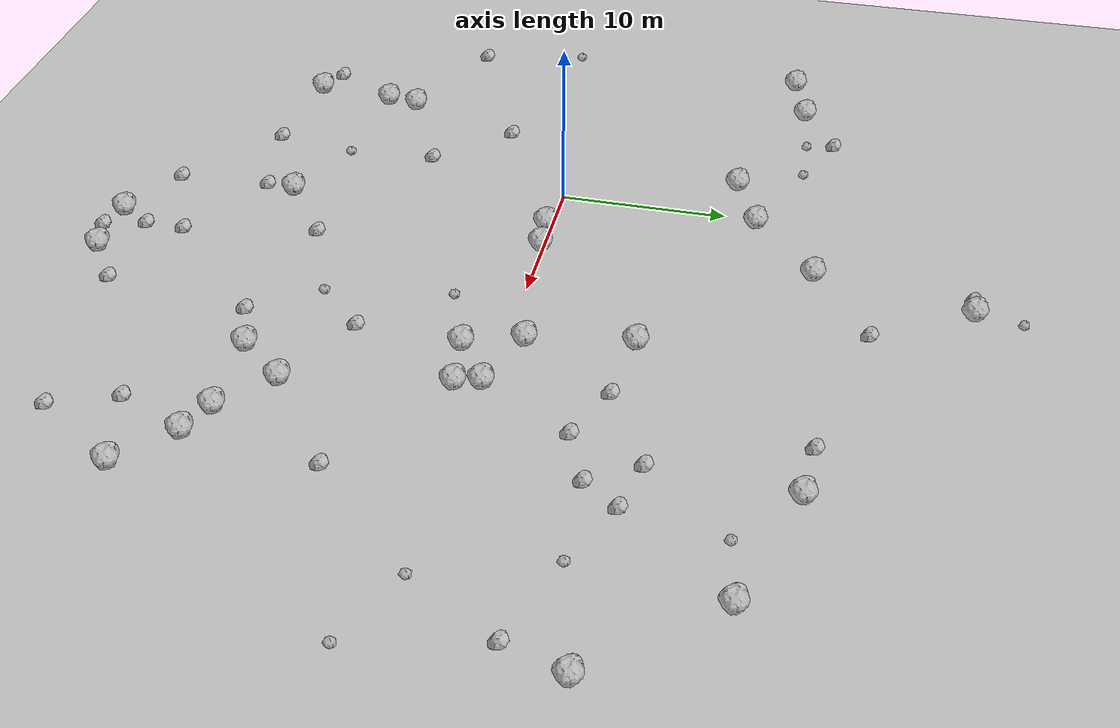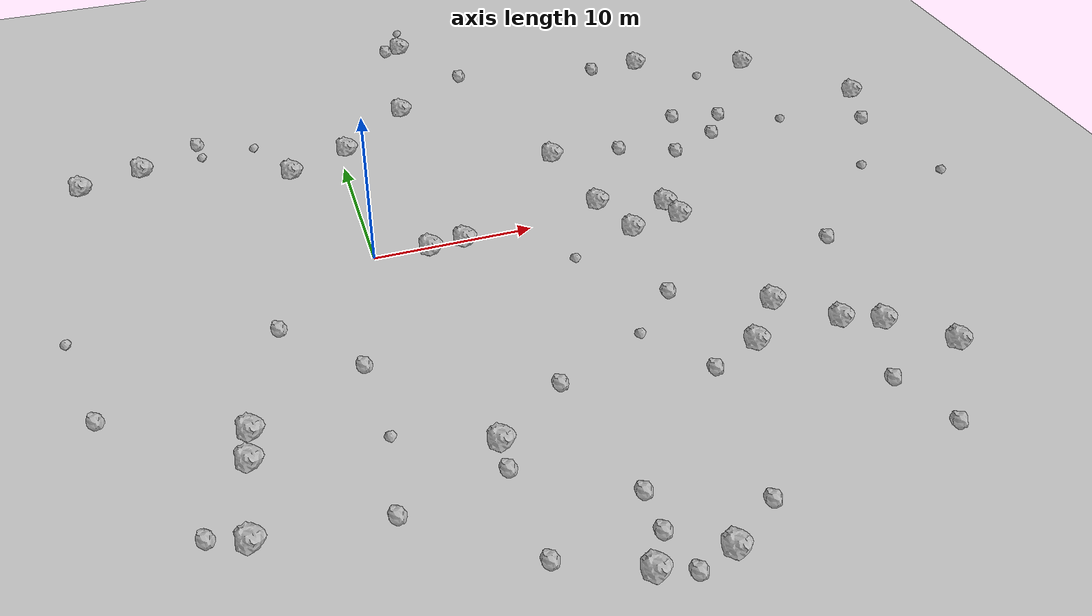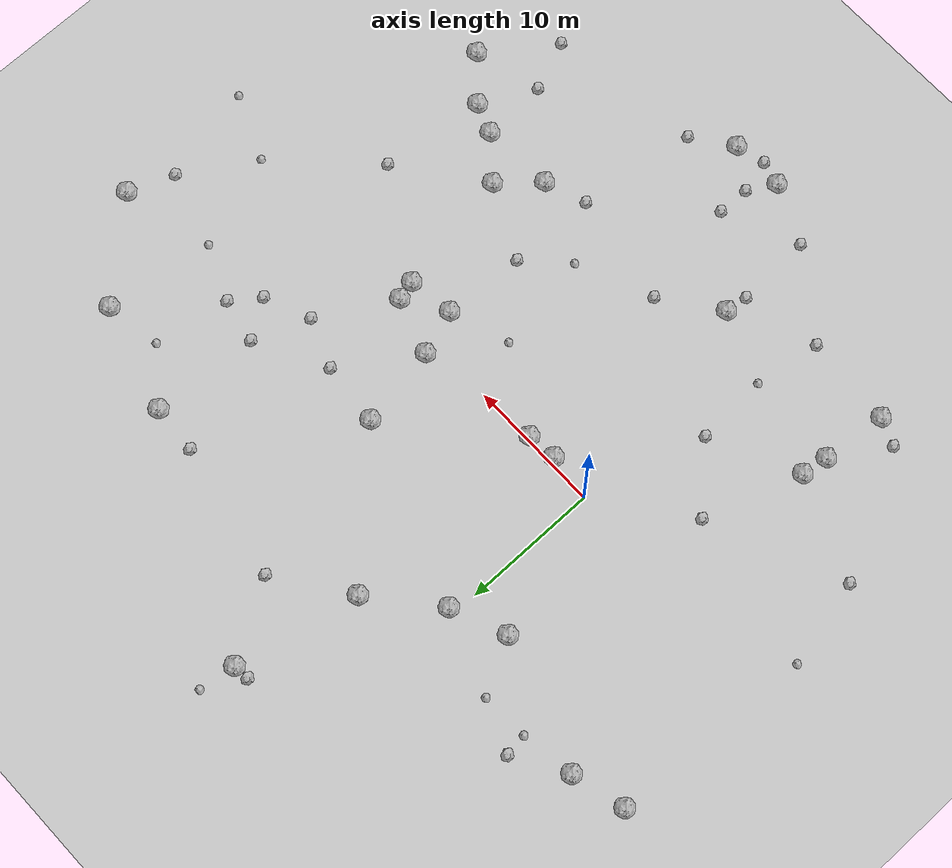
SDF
<sdf version="1.6">
 <world name="default">
  <include><uri>model://custom_ground</uri></include>
  <include><uri>model://sun</uri></include>
  <model name="rock1_0_0">
   <include><uri>model://rock1</uri><pose>0.5709609267824725 11.924836167784733 0.5 0 0 0</pose></include>
  </model>
  <model name="rock1_0_1">
   <include><uri>model://rock1</uri><pose>29.39491307878967 -17.087904305735957 0.5 0 0 0</pose></include>
  </model>
  <model name="rock1_0_2">
   <include><uri>model://rock1</uri><pose>14.933837265712569 0.9949295447033677 0.5 0 0 0</pose></include>
  </model>
  <model name="rock1_0_3">
   <include><uri>model://rock1</uri><pose>24.30930496548693 17.12489182076935 0.5 0 0 0</pose></include>
  </model>
  <model name="rock1_0_4">
   <include><uri>model://rock1</uri><pose>5.690506537570698 -0.17455987235686976 0.5 0 0 0</pose></include>
  </model>
  <model name="rock1_0_5">
   <include><uri>model://rock1</uri><pose>-9.130850718001023 -13.921788676913597 0.5 0 0 0</pose></include>
  </model>
  <model name="rock1_0_6">
   <include><uri>model://rock1</uri><pose>5.305035312677088 15.800962750302112 0.5 0 0 0</pose></include>
  </model>
  <model name="rock1_0_7">
   <include><uri>model://rock1</uri><pose>3.4669213313305356 -0.36841100369484536 0.5 0 0 0</pose></include>
  </model>
  <model name="rock1_0_8">
   <include><uri>model://rock1</uri><pose>-17.014447587070222 12.532294975776047 0.5 0 0 0</pose></include>
  </model>
  <model name="rock1_0_9">
   <include><uri>model://rock1</uri><pose>-8.849555464740998 -11.955227766880725 0.5 0 0 0</pose></include>
  </model>
  <model name="rock1_0_10">
   <include><uri>model://rock1</uri><pose>16.061428679080898 -2.2822578574318406 0.5 0 0 0</pose></include>
  </model>
  <model name="rock1_0_11">
   <include><uri>model://rock1</uri><pose>21.153007496939296 -11.021854077770577 0.5 0 0 0</pose></include>
  </model>
  <model name="rock1_0_12">
   <include><uri>model://rock1</uri><pose>7.4793040844678025 -25.692660465919744 0.5 0 0 0</pose></include>
  </model>
  <model name="rock1_0_13">
   <include><uri>model://rock1</uri><pose>24.137377785898167 -13.530726777062302 0.5 0 0 0</pose></include>
  </model>
  <model name="rock1_0_14">
   <include><uri>model://rock1</uri><pose>7.2460394517262685 24.987853640662706 0.5 0 0 0</pose></include>
  </model>
  <model name="rock1_0_15">
   <include><uri>model://rock1</uri><pose>11.475056743162991 -25.651605418547526 0.5 0 0 0</pose></include>
  </model>
  <model name="rock1_0_16">
   <include><uri>model://rock1</uri><pose>19.46746038672682 -1.828235305087965 0.5 0 0 0</pose></include>
  </model>
  <model name="rock1_0_17">
   <include><uri>model://rock1</uri><pose>3.079094262810248 -16.410808211682344 0.5 0 0 0</pose></include>
  </model>
  <model name="rock1_0_18">
   <include><uri>model://rock1</uri><pose>-3.4714569849187953 10.309843690889316 0.5 0 0 0</pose></include>
  </model>
  <model name="rock1_0_19">
   <include><uri>model://rock1</uri><pose>26.375126599245036 -14.390342148528322 0.5 0 0 0</pose></include>
  </model>
  <model name="rock1_0_20">
   <include><uri>model://rock1</uri><pose>18.705844454760296 -13.76979937157764 0.5 0 0 0</pose></include>
  </model>
  <model name="rock1_0_21">
   <include><uri>model://rock1</uri><pose>19.10455708358726 -0.3819151877034841 0.5 0 0 0</pose></include>
  </model>
  <model name="rock1_0_22">
   <include><uri>model://rock1</uri><pose>-13.062558602418166 13.546242114762784 0.5 0 0 0</pose></include>
  </model>
  <model name="rock1_0_23">
   <include><uri>model://rock1</uri><pose>38.12931599843895 8.354175264215861 0.5 0 0 0</pose></include>
  </model>
  <model name="rock1_0_24">
   <include><uri>model://rock1</uri><pose>-9.63604765552752 -18.716124753431764 0.5 0 0 0</pose></include>
  </model>
  <model name="rock1_0_25">
   <include><uri>model://rock1</uri><pose>32.30392688301454 14.7874263075623 0.5 0 0 0</pose></include>
  </model>
  <model name="rock1_0_26">
   <include><uri>model://rock1</uri><pose>13.915197304523986 6.9992979716585495 0.5 0 0 0</pose></include>
  </model>
  <model name="rock2_0_0">
   <include><uri>model://rock2</uri><pose>25.841019970501705 -22.10304186466138 0.3 0 0 0</pose></include>
  </model>
  <model name="rock2_0_1">
   <include><uri>model://rock2</uri><pose>8.638472492994222 -23.770864845822583 0.3 0 0 0</pose></include>
  </model>
  <model name="rock2_0_2">
   <include><uri>model://rock2</uri><pose>-2.9211205448222124 -19.25450530029349 0.3 0 0 0</pose></include>
  </model>
  <model name="rock2_0_3">
   <include><uri>model://rock2</uri><pose>22.23248173480453 5.075046047722488 0.3 0 0 0</pose></include>
  </model>
  <model name="rock2_0_4">
   <include><uri>model://rock2</uri><pose>18.589331766470515 6.509073909165949 0.3 0 0 0</pose></include>
  </model>
  <model name="rock2_0_5">
   <include><uri>model://rock2</uri><pose>36.85502291245253 4.955002674389753 0.3 0 0 0</pose></include>
  </model>
  <model name="rock2_0_6">
   <include><uri>model://rock2</uri><pose>-6.466458988255582 -4.77362626653326 0.3 0 0 0</pose></include>
  </model>
  <model name="rock2_0_7">
   <include><uri>model://rock2</uri><pose>27.14583984797072 8.50401554256301 0.3 0 0 0</pose></include>
  </model>
  <model name="rock2_0_8">
   <include><uri>model://rock2</uri><pose>24.352087364102438 -18.425971568425194 0.3 0 0 0</pose></include>
  </model>
  <model name="rock2_0_9">
   <include><uri>model://rock2</uri><pose>15.617348500426083 -14.882801950318425 0.3 0 0 0</pose></include>
  </model>
  <model name="rock2_0_10">
   <include><uri>model://rock2</uri><pose>-2.449412819848 -9.007034915720354 0.3 0 0 0</pose></include>
  </model>
  <model name="rock2_0_11">
   <include><uri>model://rock2</uri><pose>-9.315354573040546 15.747434206515095 0.3 0 0 0</pose></include>
  </model>
  <model name="rock2_0_12">
   <include><uri>model://rock2</uri><pose>3.1193927499961163 -23.729530830193546 0.3 0 0 0</pose></include>
  </model>
  <model name="rock2_0_13">
   <include><uri>model://rock2</uri><pose>14.382343701023622 -23.670240278554918 0.3 0 0 0</pose></include>
  </model>
  <model name="rock2_0_14">
   <include><uri>model://rock2</uri><pose>25.632867735354736 6.458670355337389 0.3 0 0 0</pose></include>
  </model>
  <model name="rock2_0_15">
   <include><uri>model://rock2</uri><pose>20.691694865873934 17.382331641589516 0.3 0 0 0</pose></include>
  </model>
  <model name="rock2_0_16">
   <include><uri>model://rock2</uri><pose>10.579671168137516 19.418638952899073 0.3 0 0 0</pose></include>
  </model>
  <model name="rock2_0_17">
   <include><uri>model://rock2</uri><pose>27.256655375496237 -6.597911526646364 0.3 0 0 0</pose></include>
  </model>
  <model name="rock2_0_18">
   <include><uri>model://rock2</uri><pose>2.8751638617344604 -18.142649905727954 0.3 0 0 0</pose></include>
  </model>
  <model name="rock2_0_19">
   <include><uri>model://rock2</uri><pose>7.227771927873494 -13.464098278016476 0.3 0 0 0</pose></include>
  </model>
  <model name="rock2_0_20">
   <include><uri>model://rock2</uri><pose>9.294422837239388 -26.254476745262313 0.3 0 0 0</pose></include>
  </model>
  <model name="rock2_0_21">
   <include><uri>model://rock2</uri><pose>23.82424203241247 9.206574021631866 0.3 0 0 0</pose></include>
  </model>
  <model name="rock2_0_22">
   <include><uri>model://rock2</uri><pose>6.054696293799694 24.89122554175016 0.3 0 0 0</pose></include>
  </model>
  <model name="rock2_0_23">
   <include><uri>model://rock2</uri><pose>15.717220958583958 -8.35302585784132 0.3 0 0 0</pose></include>
  </model>
  <model name="rock2_0_24">
   <include><uri>model://rock2</uri><pose>8.680582557287963 -21.394152263109476 0.3 0 0 0</pose></include>
  </model>
  <model name="rock2_0_25">
   <include><uri>model://rock2</uri><pose>-11.635042928615817 -17.922117068110136 0.3 0 0 0</pose></include>
  </model>
  <model name="rock2_0_26">
   <include><uri>model://rock2</uri><pose>-16.378122605718037 -8.89737674887964 0.3 0 0 0</pose></include>
  </model>
  <model name="rock3_0_0">
   <include><uri>model://rock3</uri><pose>11.622226677149339 -3.8457371758402736 0.2 0 0 0</pose></include>
  </model>
  <model name="rock3_0_1">
   <include><uri>model://rock3</uri><pose>28.09554273809036 14.09028258733241 0.2 0 0 0</pose></include>
  </model>
  <model name="rock3_0_2">
   <include><uri>model://rock3</uri><pose>-17.905547700766917 -2.4889046764390272 0.2 0 0 0</pose></include>
  </model>
  <model name="rock3_0_3">
   <include><uri>model://rock3</uri><pose>-2.1811312042561966 -14.383594957133035 0.2 0 0 0</pose></include>
  </model>
  <model name="rock3_0_4">
   <include><uri>model://rock3</uri><pose>12.795597405230616 -11.193241498166191 0.2 0 0 0</pose></include>
  </model>
  <model name="rock3_0_5">
   <include><uri>model://rock3</uri><pose>7.615377417498831 27.678130217965005 0.2 0 0 0</pose></include>
  </model>
  <model name="rock3_0_6">
   <include><uri>model://rock3</uri><pose>-9.122462548260506 14.049659557542228 0.2 0 0 0</pose></include>
  </model>
  <model name="rock3_0_7">
   <include><uri>model://rock3</uri><pose>-5.588522811025726 14.174954919040417 0.2 0 0 0</pose></include>
  </model>
  <model name="rock3_0_8">
   <include><uri>model://rock3</uri><pose>31.206595891827376 6.666687059003081 0.2 0 0 0</pose></include>
  </model>
  <model name="rock3_0_9">
   <include><uri>model://rock3</uri><pose>33.62727356889978 -0.3120218157683574 0.2 0 0 0</pose></include>
  </model>
  <model name="rock3_0_10">
   <include><uri>model://rock3</uri><pose>38.454338613675546 -2.388951410110451 0.2 0 0 0</pose></include>
  </model>
 </world>
</sdf>
